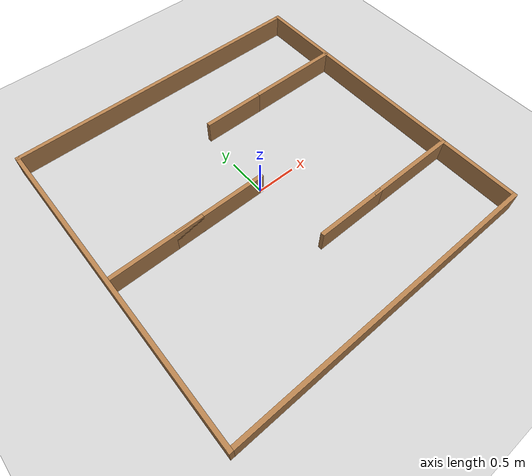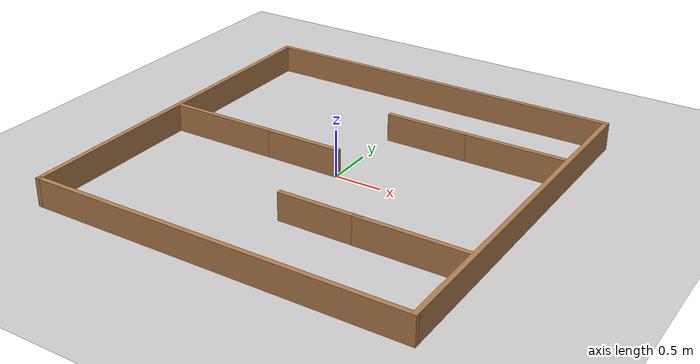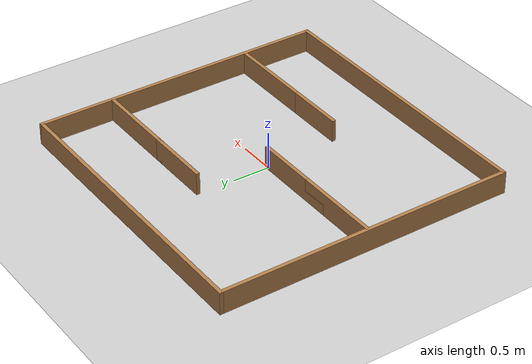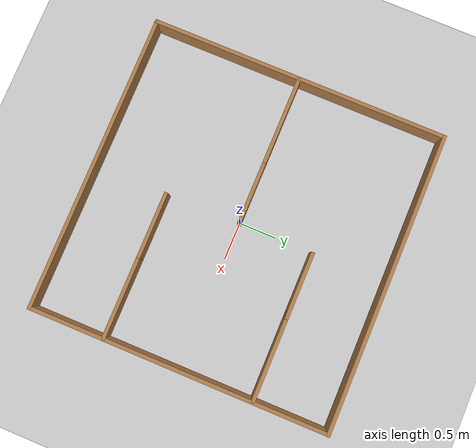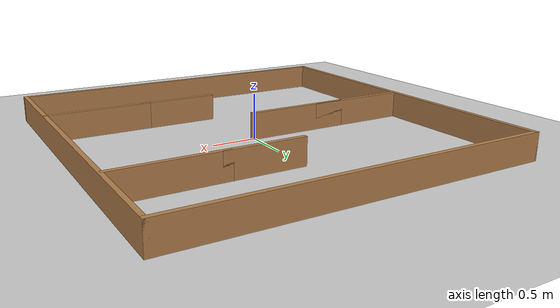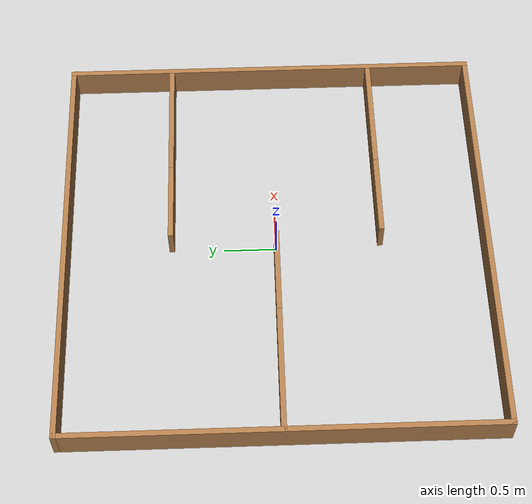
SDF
<sdf version="1.7">
 <world name="default">
  <light name="sun" type="directional">
   <pose>0 0 10 0 -0 0</pose>
   <diffuse>0.8 0.8 0.8 1</diffuse>
   <specular>0.2 0.2 0.2 1</specular>
   <attenuation>
    <range>1000</range>
    <constant>0.9</constant>
    <linear>0.01</linear>
    <quadratic>0.001</quadratic>
   </attenuation>
   <direction>-0.5 0.1 -0.9</direction>
   <spot><inner_angle>0</inner_angle><outer_angle>0</outer_angle><falloff>0</falloff></spot>
  </light>
  <model name="ground_plane">
   <static>1</static>
   <link name="link">
    <collision name="collision">
     <geometry><plane><normal>0 0 1</normal><size>100 100</size></plane></geometry>
     <surface>
      <contact><collide_bitmask>65535</collide_bitmask></contact>
      <friction><ode><mu>100</mu><mu2>50</mu2></ode></friction>
     </surface>
    </collision>
    <visual name="visual">
     <cast_shadows>0</cast_shadows>
     <geometry><plane><normal>0 0 1</normal><size>100 100</size></plane></geometry>
     <material>
      <script><uri>file://media/materials/scripts/gazebo.material</uri><name>Gazebo/Grey</name></script>
     </material>
    </visual>
   </link>
  </model>
  <gravity>0 0 -9.8</gravity>
  <magnetic_field>6e-06 2.3e-05 -4.2e-05</magnetic_field>
  <atmosphere type="adiabatic"/>
  <physics type="ode">
   <max_step_size>0.001</max_step_size>
   <real_time_factor>1</real_time_factor>
   <real_time_update_rate>1000</real_time_update_rate>
  </physics>
  <scene><ambient>0.4 0.4 0.4 1</ambient><background>0.7 0.7 0.7 1</background><shadows>1</shadows></scene>
  <audio><device>default</device></audio>
  <spherical_coordinates>
   <surface_model>EARTH_WGS84</surface_model>
   <latitude_deg>0</latitude_deg>
   <longitude_deg>0</longitude_deg>
   <elevation>0</elevation>
   <heading_deg>0</heading_deg>
  </spherical_coordinates>
  <model name="square4m">
   <link name="Wall_10">
    <collision name="Wall_10_Collision">
     <geometry><box><size>4.05 0.05 0.3</size></box></geometry>
     <pose>0 0 0.15 0 -0 0</pose>
    </collision>
    <visual name="Wall_10_Visual">
     <pose>0 0 0.15 0 -0 0</pose>
     <geometry><box><size>4.05 0.05 0.3</size></box></geometry>
     <material>
      <script><uri>file://media/materials/scripts/gazebo.material</uri><name>Gazebo/Wood</name></script>
      <ambient>1 1 1 1</ambient>
     </material>
     <meta><layer>0</layer></meta>
    </visual>
    <pose>0 2 0 0 -0 0</pose>
   </link>
   <link name="Wall_12">
    <collision name="Wall_12_Collision">
     <geometry><box><size>4.05 0.05 0.3</size></box></geometry>
     <pose>0 0 0.15 0 -0 0</pose>
    </collision>
    <visual name="Wall_12_Visual">
     <pose>0 0 0.15 0 -0 0</pose>
     <geometry><box><size>4.05 0.05 0.3</size></box></geometry>
     <material>
      <script><uri>file://media/materials/scripts/gazebo.material</uri><name>Gazebo/Wood</name></script>
      <ambient>1 1 1 1</ambient>
     </material>
     <meta><layer>0</layer></meta>
    </visual>
    <pose>2 0 0 0 -0 -1.5708</pose>
   </link>
   <link name="Wall_14">
    <collision name="Wall_14_Collision">
     <geometry><box><size>4.05 0.05 0.3</size></box></geometry>
     <pose>0 0 0.15 0 -0 0</pose>
    </collision>
    <visual name="Wall_14_Visual">
     <pose>0 0 0.15 0 -0 0</pose>
     <geometry><box><size>4.05 0.05 0.3</size></box></geometry>
     <material>
      <script><uri>file://media/materials/scripts/gazebo.material</uri><name>Gazebo/Wood</name></script>
      <ambient>1 1 1 1</ambient>
     </material>
     <meta><layer>0</layer></meta>
    </visual>
    <pose>0 -2 0 0 -0 3.14159</pose>
   </link>
   <link name="Wall_8">
    <collision name="Wall_8_Collision">
     <geometry><box><size>4.05 0.05 0.3</size></box></geometry>
     <pose>0 0 0.15 0 -0 0</pose>
    </collision>
    <visual name="Wall_8_Visual">
     <pose>0 0 0.15 0 -0 0</pose>
     <geometry><box><size>4.05 0.05 0.3</size></box></geometry>
     <material>
      <script><uri>file://media/materials/scripts/gazebo.material</uri><name>Gazebo/Wood</name></script>
      <ambient>1 1 1 1</ambient>
     </material>
     <meta><layer>0</layer></meta>
    </visual>
    <pose>-2 0 0 0 -0 -1.5708</pose>
   </link>
   <static>1</static>
  </model>
  <model name="wall120cm">
   <pose>-1.40555 0 0 0 -0 0</pose>
   <link name="Wall_11">
    <collision name="Wall_11_Collision">
     <geometry><box><size>1.2 0.05 0.3</size></box></geometry>
     <pose>0 0 0.15 0 -0 0</pose>
    </collision>
    <visual name="Wall_11_Visual">
     <pose>0 0 0.15 0 -0 0</pose>
     <geometry><box><size>1.2 0.05 0.3</size></box></geometry>
     <material>
      <script><uri>file://media/materials/scripts/gazebo.material</uri><name>Gazebo/Wood</name></script>
      <ambient>1 1 1 1</ambient>
     </material>
     <meta><layer>0</layer></meta>
    </visual>
   </link>
   <static>1</static>
  </model>
  <model name="wall120cm_0">
   <pose>-0.56882 0 0 0 -0 0</pose>
   <link name="Wall_11">
    <collision name="Wall_11_Collision">
     <geometry><box><size>1.2 0.05 0.3</size></box></geometry>
     <pose>0 0 0.15 0 -0 0</pose>
    </collision>
    <visual name="Wall_11_Visual">
     <pose>0 0 0.15 0 -0 0</pose>
     <geometry><box><size>1.2 0.05 0.3</size></box></geometry>
     <material>
      <script><uri>file://media/materials/scripts/gazebo.material</uri><name>Gazebo/Wood</name></script>
      <ambient>1 1 1 1</ambient>
     </material>
     <meta><layer>0</layer></meta>
    </visual>
   </link>
   <static>1</static>
  </model>
  <model name="wall120cm_1">
   <pose>1.41841 -1 0 0 -0 0</pose>
   <link name="Wall_11">
    <collision name="Wall_11_Collision">
     <geometry><box><size>1.2 0.05 0.3</size></box></geometry>
     <pose>0 0 0.15 0 -0 0</pose>
    </collision>
    <visual name="Wall_11_Visual">
     <pose>0 0 0.15 0 -0 0</pose>
     <geometry><box><size>1.2 0.05 0.3</size></box></geometry>
     <material>
      <script><uri>file://media/materials/scripts/gazebo.material</uri><name>Gazebo/Wood</name></script>
      <ambient>1 1 1 1</ambient>
     </material>
     <meta><layer>0</layer></meta>
    </visual>
   </link>
   <static>1</static>
  </model>
  <model name="wall120cm_2">
   <pose>1.40098 1 0 0 -0 0</pose>
   <link name="Wall_11">
    <collision name="Wall_11_Collision">
     <geometry><box><size>1.2 0.05 0.3</size></box></geometry>
     <pose>0 0 0.15 0 -0 0</pose>
    </collision>
    <visual name="Wall_11_Visual">
     <pose>0 0 0.15 0 -0 0</pose>
     <geometry><box><size>1.2 0.05 0.3</size></box></geometry>
     <material>
      <script><uri>file://media/materials/scripts/gazebo.material</uri><name>Gazebo/Wood</name></script>
      <ambient>1 1 1 1</ambient>
     </material>
     <meta><layer>0</layer></meta>
    </visual>
   </link>
   <static>1</static>
  </model>
  <model name="wall90cm">
   <pose>0.468373 -1 0 0 -0 0</pose>
   <link name="Wall_6">
    <collision name="Wall_6_Collision">
     <geometry><box><size>0.9 0.05 0.3</size></box></geometry>
     <pose>0 0 0.15 0 -0 0</pose>
    </collision>
    <visual name="Wall_6_Visual">
     <pose>0 0 0.15 0 -0 0</pose>
     <geometry><box><size>0.9 0.05 0.3</size></box></geometry>
     <material>
      <script><uri>file://media/materials/scripts/gazebo.material</uri><name>Gazebo/Wood</name></script>
      <ambient>1 1 1 1</ambient>
     </material>
     <meta><layer>0</layer></meta>
    </visual>
   </link>
   <static>1</static>
  </model>
  <model name="wall90cm_0">
   <pose>0.459658 1 0 0 -0 0</pose>
   <link name="Wall_6">
    <collision name="Wall_6_Collision">
     <geometry><box><size>0.9 0.05 0.3</size></box></geometry>
     <pose>0 0 0.15 0 -0 0</pose>
    </collision>
    <visual name="Wall_6_Visual">
     <pose>0 0 0.15 0 -0 0</pose>
     <geometry><box><size>0.9 0.05 0.3</size></box></geometry>
     <material>
      <script><uri>file://media/materials/scripts/gazebo.material</uri><name>Gazebo/Wood</name></script>
      <ambient>1 1 1 1</ambient>
     </material>
     <meta><layer>0</layer></meta>
    </visual>
   </link>
   <static>1</static>
  </model>
 </world>
</sdf>
